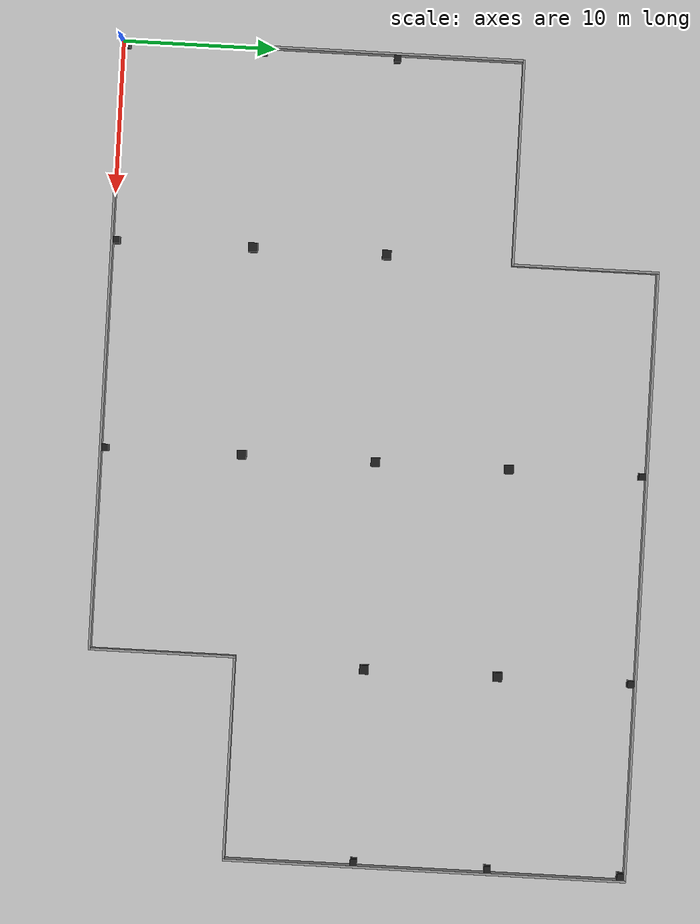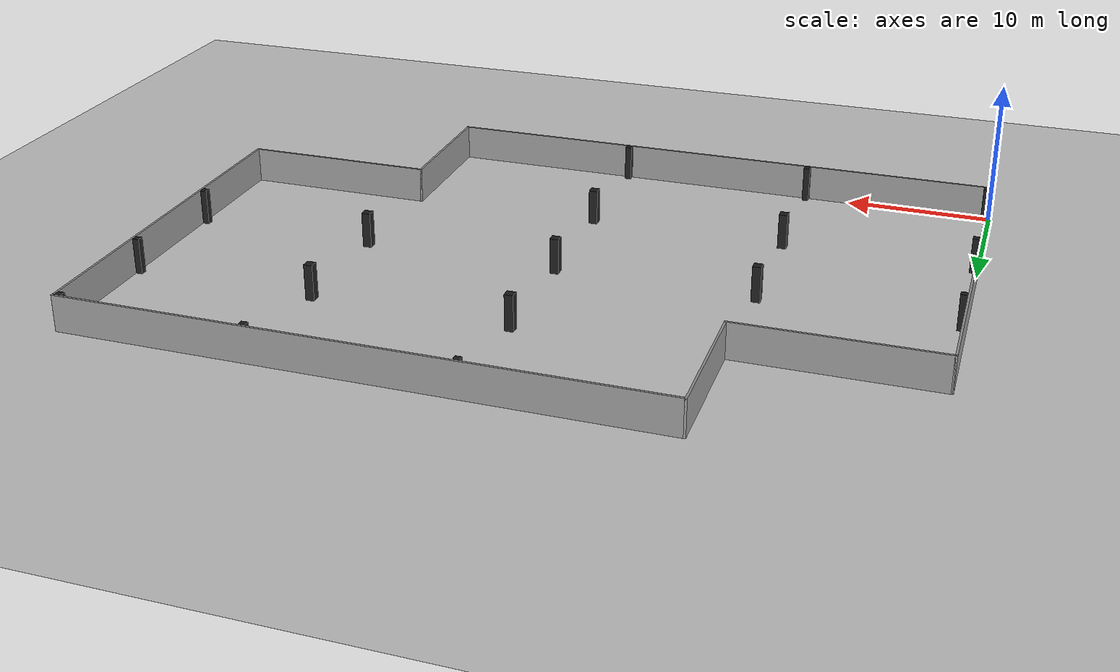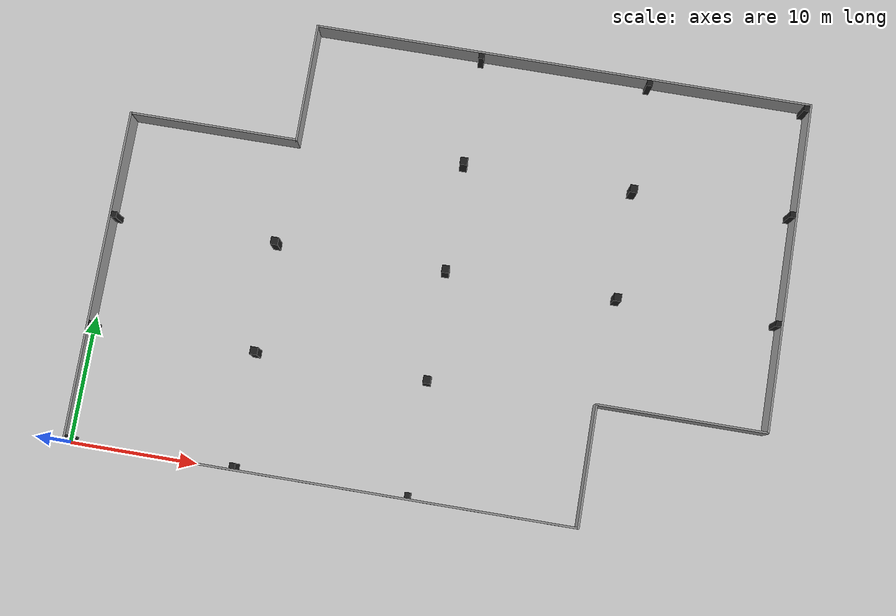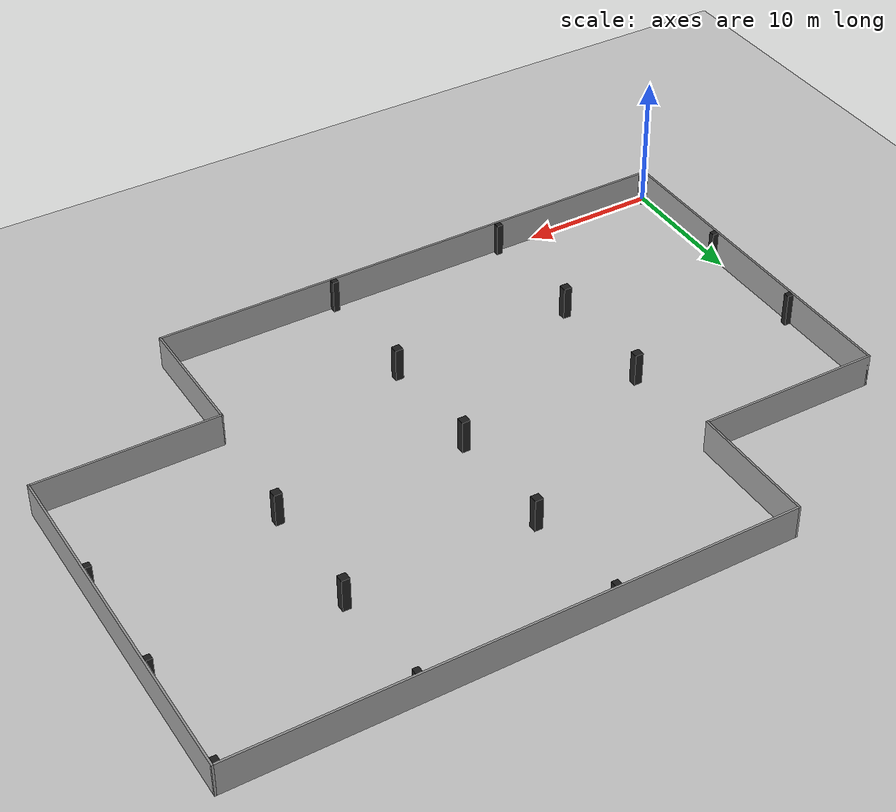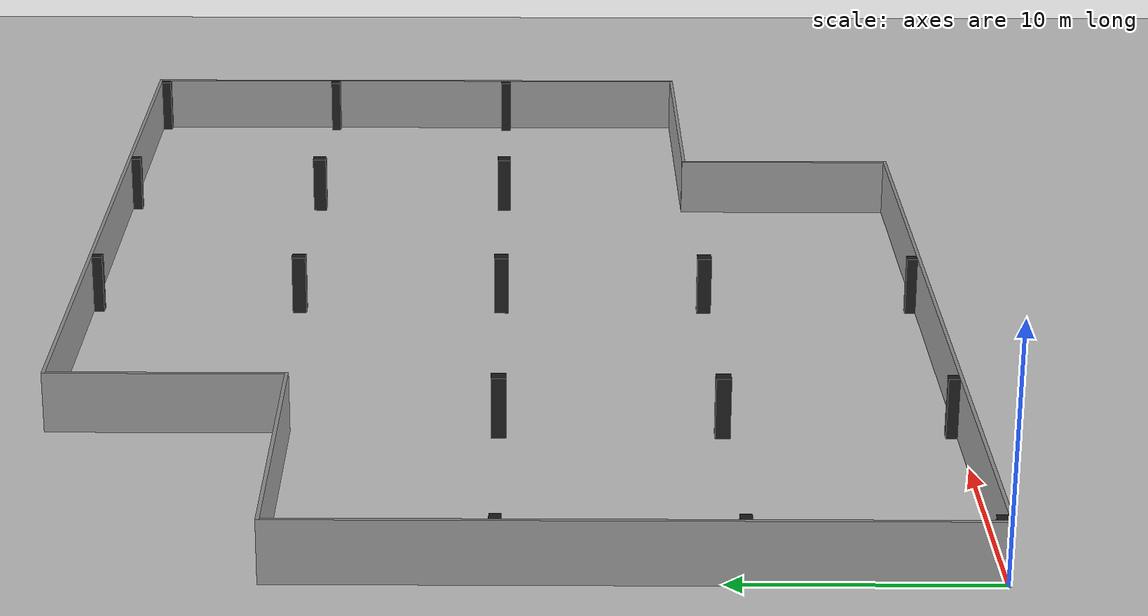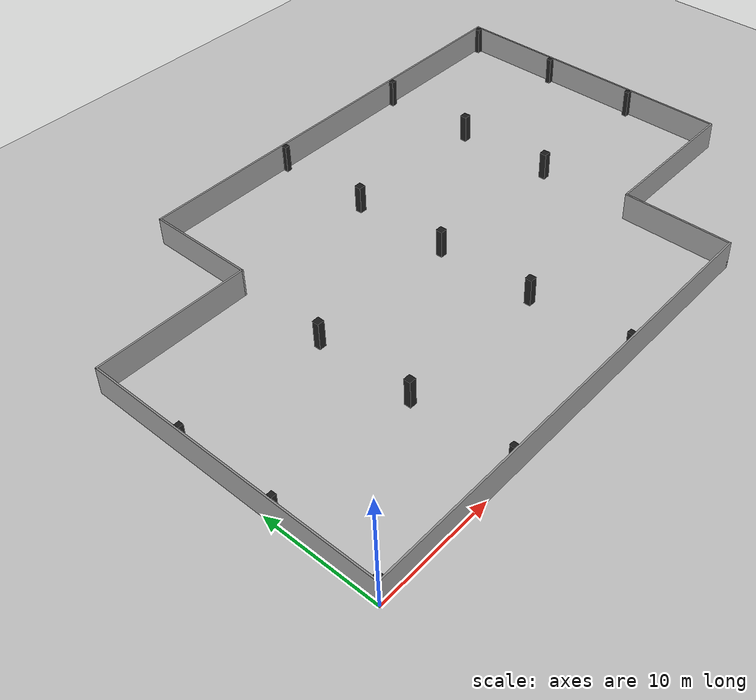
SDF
<sdf version="1.6">
 <world name="default">
  <light name="sun" type="directional">
   <pose>0 0 10 0 -0 0</pose>
   <diffuse>0.8 0.8 0.8 1</diffuse>
   <specular>0.2 0.2 0.2 1</specular>
   <attenuation>
    <range>1000</range>
    <constant>0.9</constant>
    <linear>0.01</linear>
    <quadratic>0.001</quadratic>
   </attenuation>
   <direction>-0.5 0.1 -0.9</direction>
  </light>
  <model name="ground_plane">
   <static>1</static>
   <link name="link">
    <collision name="collision">
     <geometry><plane><normal>0 0 1</normal><size>150 150</size></plane></geometry>
     <surface><friction><ode><mu>1000</mu><mu2>1000</mu2></ode></friction></surface>
    </collision>
    <visual name="visual">
     <cast_shadows>0</cast_shadows>
     <geometry><plane><normal>0 0 1</normal><size>150 150</size></plane></geometry>
     <material>
      <script><uri>file://media/materials/scripts/gazebo.material</uri><name>Gazebo/Grey</name></script>
     </material>
    </visual>
   </link>
  </model>
  <gravity>0 0 -9.8</gravity>
  <magnetic_field>6e-06 2.3e-05 -4.2e-05</magnetic_field>
  <atmosphere type="adiabatic"/>
  <physics name="default_physics" default="0" type="ode">
   <max_step_size>0.001</max_step_size>
   <real_time_factor>1</real_time_factor>
   <real_time_update_rate>1000</real_time_update_rate>
  </physics>
  <scene><ambient>0.4 0.4 0.4 1</ambient><background>0.7 0.7 0.7 1</background><shadows>1</shadows></scene>
  <audio><device>default</device></audio>
  <spherical_coordinates>
   <surface_model>EARTH_WGS84</surface_model>
   <latitude_deg>0</latitude_deg>
   <longitude_deg>0</longitude_deg>
   <elevation>0</elevation>
   <heading_deg>0</heading_deg>
  </spherical_coordinates>
  <model name="my_new_world">
   <pose>26.5875 17.875 0 0 -0 0</pose>
   <link name="Wall_10">
    <collision name="Wall_10_Collision">
     <geometry><box><size>26.4 0.15 2.5</size></box></geometry>
     <pose>0 0 1.25 0 -0 0</pose>
    </collision>
    <visual name="Wall_10_Visual">
     <pose>0 0 1.25 0 -0 0</pose>
     <geometry><box><size>26.4 0.15 2.5</size></box></geometry>
     <material>
      <script><uri>file://media/materials/scripts/gazebo.material</uri><name>Gazebo/Grey</name></script>
      <ambient>1 1 1 1</ambient>
     </material>
     <meta><layer>0</layer></meta>
    </visual>
    <pose>26.5875 4.75 0 0 -0 1.5708</pose>
   </link>
   <link name="Wall_12">
    <collision name="Wall_12_Collision">
     <geometry><box><size>13.5 0.15 2.5</size></box></geometry>
     <pose>0 0 1.25 0 -0 0</pose>
    </collision>
    <visual name="Wall_12_Visual">
     <pose>0 0 1.25 0 -0 0</pose>
     <geometry><box><size>13.5 0.15 2.5</size></box></geometry>
     <material>
      <script><uri>file://media/materials/scripts/gazebo.material</uri><name>Gazebo/Grey</name></script>
      <ambient>1 1 1 1</ambient>
     </material>
     <meta><layer>0</layer></meta>
    </visual>
    <pose>-19.9125 8.375 0 0 -0 0</pose>
   </link>
   <link name="Wall_14">
    <collision name="Wall_14_Collision">
     <geometry><box><size>26.4 0.15 2.5</size></box></geometry>
     <pose>0 0 1.25 0 -0 0</pose>
    </collision>
    <visual name="Wall_14_Visual">
     <pose>0 0 1.25 0 -0 0</pose>
     <geometry><box><size>26.4 0.15 2.5</size></box></geometry>
     <material>
      <script><uri>file://media/materials/scripts/gazebo.material</uri><name>Gazebo/Grey</name></script>
      <ambient>1 1 1 1</ambient>
     </material>
     <meta><layer>0</layer></meta>
    </visual>
    <pose>-26.5875 -4.75 0 0 -0 1.5708</pose>
   </link>
   <link name="Wall_16">
    <collision name="Wall_16_Collision">
     <geometry><box><size>9.65 0.15 2.5</size></box></geometry>
     <pose>0 0 1.25 0 -0 0</pose>
    </collision>
    <visual name="Wall_16_Visual">
     <pose>0 0 1.25 0 -0 0</pose>
     <geometry><box><size>9.65 0.15 2.5</size></box></geometry>
     <material>
      <script><uri>file://media/materials/scripts/gazebo.material</uri><name>Gazebo/Grey</name></script>
      <ambient>1 1 1 1</ambient>
     </material>
     <meta><layer>0</layer></meta>
    </visual>
    <pose>-13.2375 13.125 0 0 -0 1.5708</pose>
   </link>
   <link name="Wall_18">
    <collision name="Wall_18_Collision">
     <geometry><box><size>39.975 0.15 2.5</size></box></geometry>
     <pose>0 0 1.25 0 -0 0</pose>
    </collision>
    <visual name="Wall_18_Visual">
     <pose>0 0 1.25 0 -0 0</pose>
     <geometry><box><size>39.975 0.15 2.5</size></box></geometry>
     <material>
      <script><uri>file://media/materials/scripts/gazebo.material</uri><name>Gazebo/Grey</name></script>
      <ambient>1 1 1 1</ambient>
     </material>
     <meta><layer>0</layer></meta>
    </visual>
    <pose>6.675 17.875 0 0 -0 0</pose>
   </link>
   <link name="Wall_4">
    <collision name="Wall_4_Collision">
     <geometry><box><size>40.05 0.15 2.5</size></box></geometry>
     <pose>0 0 1.25 0 -0 0</pose>
    </collision>
    <visual name="Wall_4_Visual">
     <pose>0 0 1.25 0 -0 0</pose>
     <geometry><box><size>40.05 0.15 2.5</size></box></geometry>
     <material>
      <script><uri>file://media/materials/scripts/gazebo.material</uri><name>Gazebo/Grey</name></script>
      <ambient>1 1 1 1</ambient>
     </material>
     <meta><layer>0</layer></meta>
    </visual>
    <pose>-6.6375 -17.875 0 0 -0 0</pose>
   </link>
   <link name="Wall_6">
    <collision name="Wall_6_Collision">
     <geometry><box><size>9.65 0.15 2.5</size></box></geometry>
     <pose>0 0 1.25 0 -0 0</pose>
    </collision>
    <visual name="Wall_6_Visual">
     <pose>0 0 1.25 0 -0 0</pose>
     <geometry><box><size>9.65 0.15 2.5</size></box></geometry>
     <material>
      <script><uri>file://media/materials/scripts/gazebo.material</uri><name>Gazebo/Grey</name></script>
      <ambient>1 1 1 1</ambient>
     </material>
     <meta><layer>0</layer></meta>
    </visual>
    <pose>13.3125 -13.125 0 0 -0 1.5708</pose>
   </link>
   <link name="Wall_8">
    <collision name="Wall_8_Collision">
     <geometry><box><size>13.425 0.15 2.5</size></box></geometry>
     <pose>0 0 1.25 0 -0 0</pose>
    </collision>
    <visual name="Wall_8_Visual">
     <pose>0 0 1.25 0 -0 0</pose>
     <geometry><box><size>13.425 0.15 2.5</size></box></geometry>
     <material>
      <script><uri>file://media/materials/scripts/gazebo.material</uri><name>Gazebo/Grey</name></script>
      <ambient>1 1 1 1</ambient>
     </material>
     <meta><layer>0</layer></meta>
    </visual>
    <pose>19.95 -8.375 0 0 -0 0</pose>
   </link>
   <static>1</static>
   <link name="A1">
    <pose>-26.2875 -17.575 1.25 0 0 0</pose>
    <collision name="collision_A1"><geometry><box><size>0.45 0.45 2.5</size></box></geometry></collision>
    <visual name="visual_A1">
     <geometry><box><size>0.45 0.45 2.5</size></box></geometry>
     <material>
      <script><uri>file://media/materials/scripts/gazebo.material</uri><name>Gazebo/Black</name></script>
     </material>
    </visual>
   </link>
   <link name="A2">
    <pose>-13.4625 -17.575 1.25 0 0 0</pose>
    <collision name="collision_A2"><geometry><box><size>0.45 0.45 2.5</size></box></geometry></collision>
    <visual name="visual_A2">
     <geometry><box><size>0.45 0.45 2.5</size></box></geometry>
     <material>
      <script><uri>file://media/materials/scripts/gazebo.material</uri><name>Gazebo/Black</name></script>
     </material>
    </visual>
   </link>
   <link name="A3">
    <pose>0.1125 -17.575 1.25 0 0 0</pose>
    <collision name="collision_A3"><geometry><box><size>0.45 0.45 2.5</size></box></geometry></collision>
    <visual name="visual_A3">
     <geometry><box><size>0.45 0.45 2.5</size></box></geometry>
     <material>
      <script><uri>file://media/materials/scripts/gazebo.material</uri><name>Gazebo/Black</name></script>
     </material>
    </visual>
   </link>
   <link name="B1">
    <pose>-26.2875 -8.6375 1.25 0 0 0</pose>
    <collision name="collision_B1"><geometry><box><size>0.45 0.45 2.5</size></box></geometry></collision>
    <visual name="visual_B1">
     <geometry><box><size>0.45 0.45 2.5</size></box></geometry>
     <material>
      <script><uri>file://media/materials/scripts/gazebo.material</uri><name>Gazebo/Black</name></script>
     </material>
    </visual>
   </link>
   <link name="B2">
    <pose>-13.4625 -8.6375 1.25 0 0 0</pose>
    <collision name="collision_B2"><geometry><box><size>0.6 0.6 2.5</size></box></geometry></collision>
    <visual name="visual_B2">
     <geometry><box><size>0.6 0.6 2.5</size></box></geometry>
     <material>
      <script><uri>file://media/materials/scripts/gazebo.material</uri><name>Gazebo/Black</name></script>
     </material>
    </visual>
   </link>
   <link name="B3">
    <pose>0.1125 -8.6375 1.25 0 0 0</pose>
    <collision name="collision_B3"><geometry><box><size>0.6 0.6 2.5</size></box></geometry></collision>
    <visual name="visual_B3">
     <geometry><box><size>0.6 0.6 2.5</size></box></geometry>
     <material>
      <script><uri>file://media/materials/scripts/gazebo.material</uri><name>Gazebo/Black</name></script>
     </material>
    </visual>
   </link>
   <link name="C1">
    <pose>-26.2875 0.1125 1.25 0 0 0</pose>
    <collision name="collision_C1"><geometry><box><size>0.45 0.45 2.5</size></box></geometry></collision>
    <visual name="visual_C1">
     <geometry><box><size>0.45 0.45 2.5</size></box></geometry>
     <material>
      <script><uri>file://media/materials/scripts/gazebo.material</uri><name>Gazebo/Black</name></script>
     </material>
    </visual>
   </link>
   <link name="C2">
    <pose>-13.4625 0.1125 1.25 0 0 0</pose>
    <collision name="collision_C2"><geometry><box><size>0.6 0.6 2.5</size></box></geometry></collision>
    <visual name="visual_C2">
     <geometry><box><size>0.6 0.6 2.5</size></box></geometry>
     <material>
      <script><uri>file://media/materials/scripts/gazebo.material</uri><name>Gazebo/Black</name></script>
     </material>
    </visual>
   </link>
   <link name="C3">
    <pose>0.1125 0.1125 1.25 0 0 0</pose>
    <collision name="collision_C3"><geometry><box><size>0.6 0.6 2.5</size></box></geometry></collision>
    <visual name="visual_C3">
     <geometry><box><size>0.6 0.6 2.5</size></box></geometry>
     <material>
      <script><uri>file://media/materials/scripts/gazebo.material</uri><name>Gazebo/Black</name></script>
     </material>
    </visual>
   </link>
   <link name="C4">
    <pose>13.6875 0.1125 1.25 0 0 0</pose>
    <collision name="collision_C4"><geometry><box><size>0.6 0.6 2.5</size></box></geometry></collision>
    <visual name="visual_C4">
     <geometry><box><size>0.6 0.6 2.5</size></box></geometry>
     <material>
      <script><uri>file://media/materials/scripts/gazebo.material</uri><name>Gazebo/Black</name></script>
     </material>
    </visual>
   </link>
   <link name="C5">
    <pose>26.2875 0.1125 1.25 0 0 0</pose>
    <collision name="collision_C5"><geometry><box><size>0.45 0.45 2.5</size></box></geometry></collision>
    <visual name="visual_C5">
     <geometry><box><size>0.45 0.45 2.5</size></box></geometry>
     <material>
      <script><uri>file://media/materials/scripts/gazebo.material</uri><name>Gazebo/Black</name></script>
     </material>
    </visual>
   </link>
   <link name="D3">
    <pose>0.1125 8.8625 1.25 0 0 0</pose>
    <collision name="collision_D3"><geometry><box><size>0.6 0.6 2.5</size></box></geometry></collision>
    <visual name="visual_D3">
     <geometry><box><size>0.6 0.6 2.5</size></box></geometry>
     <material>
      <script><uri>file://media/materials/scripts/gazebo.material</uri><name>Gazebo/Black</name></script>
     </material>
    </visual>
   </link>
   <link name="D4">
    <pose>13.6875 8.8625 1.25 0 0 0</pose>
    <collision name="collision_D4"><geometry><box><size>0.6 0.6 2.5</size></box></geometry></collision>
    <visual name="visual_D4">
     <geometry><box><size>0.6 0.6 2.5</size></box></geometry>
     <material>
      <script><uri>file://media/materials/scripts/gazebo.material</uri><name>Gazebo/Black</name></script>
     </material>
    </visual>
   </link>
   <link name="D5">
    <pose>26.2875 8.8625 1.25 0 0 0</pose>
    <collision name="collision_D5"><geometry><box><size>0.45 0.45 2.5</size></box></geometry></collision>
    <visual name="visual_D5">
     <geometry><box><size>0.45 0.45 2.5</size></box></geometry>
     <material>
      <script><uri>file://media/materials/scripts/gazebo.material</uri><name>Gazebo/Black</name></script>
     </material>
    </visual>
   </link>
   <link name="E3">
    <pose>0.1125 17.575 1.25 0 0 0</pose>
    <collision name="collision_E3"><geometry><box><size>0.45 0.45 2.5</size></box></geometry></collision>
    <visual name="visual_E3">
     <geometry><box><size>0.45 0.45 2.5</size></box></geometry>
     <material>
      <script><uri>file://media/materials/scripts/gazebo.material</uri><name>Gazebo/Black</name></script>
     </material>
    </visual>
   </link>
   <link name="E4">
    <pose>13.6875 17.575 1.25 0 0 0</pose>
    <collision name="collision_E4"><geometry><box><size>0.45 0.45 2.5</size></box></geometry></collision>
    <visual name="visual_E4">
     <geometry><box><size>0.45 0.45 2.5</size></box></geometry>
     <material>
      <script><uri>file://media/materials/scripts/gazebo.material</uri><name>Gazebo/Black</name></script>
     </material>
    </visual>
   </link>
   <link name="E5">
    <pose>26.2875 17.575 1.25 0 0 0</pose>
    <collision name="collision_E5"><geometry><box><size>0.45 0.45 2.5</size></box></geometry></collision>
    <visual name="visual_E5">
     <geometry><box><size>0.45 0.45 2.5</size></box></geometry>
     <material>
      <script><uri>file://media/materials/scripts/gazebo.material</uri><name>Gazebo/Black</name></script>
     </material>
    </visual>
   </link>
  </model>
 </world>
</sdf>
